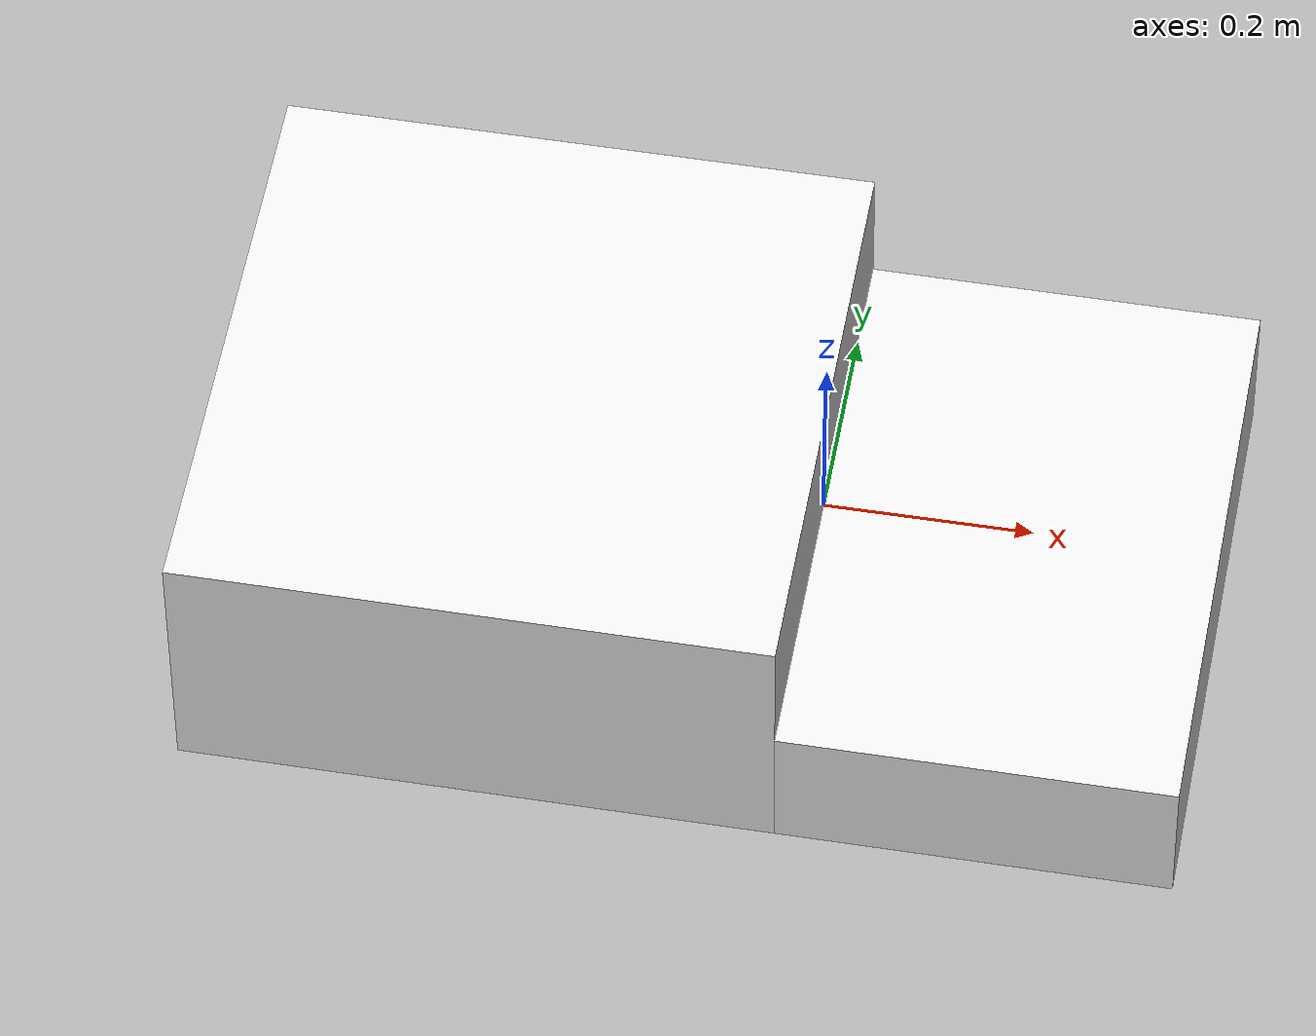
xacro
<?xml version="1.0"?>
<robot xmlns:xacro="http://www.ros.org/wiki/xacro">

    <!-- ROOT LINK
         the datum point/point of reference and point that
         everything ultimately connects to
    -->
    <link name="base_link"></link>

    <!-- base_footprint is a child but of base_link but
         has the same position as its needed for SLAM toolbox
    -->
    <link name="base_footprint"></link>

    <joint name="base_footprint_joint" type="fixed">
        <parent link="base_link"/>
        <child link="base_footprint"/>
        <origin xyz="0 0 0"/>
    </joint>

    <!-- BODY LINKS
         these define the body of the ESDA which is simplified
         as a series of boxes
    -->
    <!-- DRIVE BOX LINK -->
    <xacro:property name="drive_box_x" value="0.5725"/>
    <xacro:property name="drive_box_y" value="0.575"/>
    <xacro:property name="drive_box_z" value="0.276"/>
    <xacro:property name="drive_box_m" value="35"/>

    <link name="drive_box">
        <visual>
            <geometry>
                <box size="${drive_box_x} ${drive_box_y} ${drive_box_z}" />
            </geometry>
            <material name="white"/>
        </visual>

        <collision>
            <geometry>
                <box size="${drive_box_x} ${drive_box_y} ${drive_box_z}" />
            </geometry>
            <material name="white"/>
        </collision>

        <xacro:inertial_box mass="${drive_box_m}" x="${drive_box_x}" y="${drive_box_y}" z="${drive_box_z}">
            <origin xyz="0 0 0" rpy="0 0 0"/>
        </xacro:inertial_box>
    </link>

    <joint name="drive_box_joint" type="fixed">
        <parent link="base_link"/>
        <child link="drive_box"/>
        <origin xyz="-${drive_box_x/2} 0 0"/>
    </joint>

    <!-- STEERING BOX LINK -->
    <xacro:property name="steer_box_x" value="0.378"/>
    <xacro:property name="steer_box_y" value="0.575"/>
    <xacro:property name="steer_box_z" value="0.146"/>
    <xacro:property name="steer_box_m" value="29"/>

    <link name="steering_box">
        <visual>
            <geometry>
                <box size="${steer_box_x} ${steer_box_y} ${steer_box_z}" />
            </geometry>
            <material name="white"/>
        </visual>

        <collision>
            <geometry>
                <box size="${steer_box_x} ${steer_box_y} ${steer_box_z}" />
            </geometry>
            <material name="white"/>
        </collision>

        <xacro:inertial_box mass="${steer_box_m}" x="${steer_box_x}" y="${steer_box_y}" z="${steer_box_z}">
            <origin xyz="0 0 0" rpy="0 0 0"/>
        </xacro:inertial_box>
    </link>

    <joint name="steering_box_joint" type="fixed">
        <parent link="base_link"/>
        <child link="steering_box"/>
        <origin xyz="${steer_box_x/2} 0 -${drive_box_z/2-steer_box_z/2}"/>
    </joint>

</robot>
